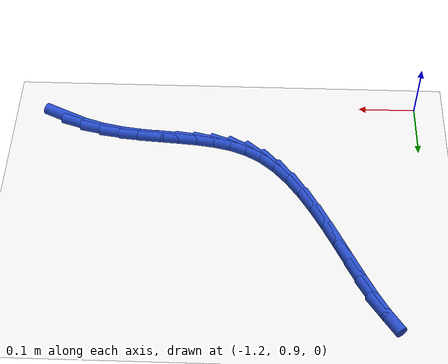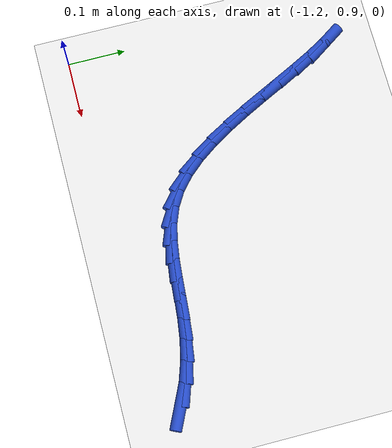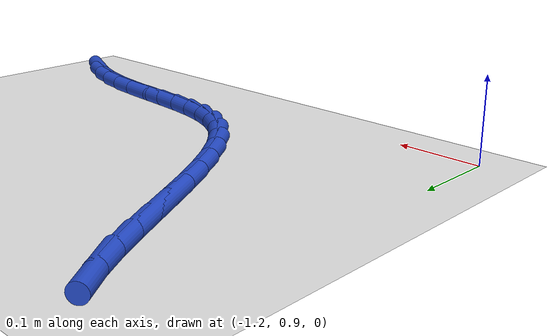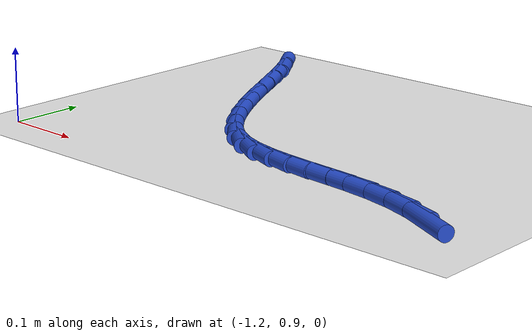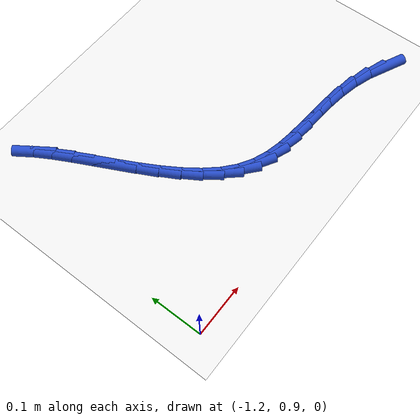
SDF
<sdf version="1.6">
 <world name="default">
  <model name="ground_plane">
   <static>1</static>
   <link name="link">
    <collision name="collision">
     <geometry><plane><normal>0 0 1</normal><size>100 100</size></plane></geometry>
     <surface><friction><ode><mu>100</mu><mu2>50</mu2></ode></friction></surface>
    </collision>
    <visual name="visual">
     <cast_shadows>0</cast_shadows>
     <geometry><plane><normal>0 0 1</normal><size>100 100</size></plane></geometry>
     <material>
      <script><uri>file://media/materials/scripts/gazebo.material</uri><name>Gazebo/WhiteGlow</name></script>
     </material>
    </visual>
   </link>
  </model>
  <model name="line">
   <link name="link_40">
    <pose>-0.5747970883728617 0.942094950162464 0.01 0 1.57 -0.4415338205154128</pose>
    <collision name="collision">
     <geometry><cylinder><radius>0.01</radius><length>0.08</length></cylinder></geometry>
    </collision>
    <visual name="visual">
     <material>
      <script><name>Gazebo/Blue</name><uri>file://media/materials/scripts/gazebo.material</uri></script>
     </material>
     <geometry><cylinder><radius>0.01</radius><length>0.08</length></cylinder></geometry>
    </visual>
   </link>
   <link name="link_41">
    <pose>-0.6097284206902308 0.9586054417624702 0.01 0 1.57 -0.3180967803701681</pose>
    <collision name="collision">
     <geometry><cylinder><radius>0.01</radius><length>0.08</length></cylinder></geometry>
    </collision>
    <visual name="visual">
     <material>
      <script><name>Gazebo/Blue</name><uri>file://media/materials/scripts/gazebo.material</uri></script>
     </material>
     <geometry><cylinder><radius>0.01</radius><length>0.08</length></cylinder></geometry>
    </visual>
   </link>
   <link name="link_42">
    <pose>-0.6446631653225249 0.97010870224219 0.01 0 1.57 -0.21502965447356776</pose>
    <collision name="collision">
     <geometry><cylinder><radius>0.01</radius><length>0.08</length></cylinder></geometry>
    </collision>
    <visual name="visual">
     <material>
      <script><name>Gazebo/Blue</name><uri>file://media/materials/scripts/gazebo.material</uri></script>
     </material>
     <geometry><cylinder><radius>0.01</radius><length>0.08</length></cylinder></geometry>
    </visual>
   </link>
   <link name="link_43">
    <pose>-0.6794056878377567 0.9776966874103797 0.01 0 1.57 -0.13781138018168332</pose>
    <collision name="collision">
     <geometry><cylinder><radius>0.01</radius><length>0.08</length></cylinder></geometry>
    </collision>
    <visual name="visual">
     <material>
      <script><name>Gazebo/Blue</name><uri>file://media/materials/scripts/gazebo.material</uri></script>
     </material>
     <geometry><cylinder><radius>0.01</radius><length>0.08</length></cylinder></geometry>
    </visual>
   </link>
   <link name="link_44">
    <pose>-0.7137603538039384 0.9824613530757954 0.01 0 1.57 -0.0895788842612445</pose>
    <collision name="collision">
     <geometry><cylinder><radius>0.01</radius><length>0.08</length></cylinder></geometry>
    </collision>
    <visual name="visual">
     <material>
      <script><name>Gazebo/Blue</name><uri>file://media/materials/scripts/gazebo.material</uri></script>
     </material>
     <geometry><cylinder><radius>0.01</radius><length>0.08</length></cylinder></geometry>
    </visual>
   </link>
   <link name="link_45">
    <pose>-0.747531528789083 0.9854946550471931 0.01 0 1.57 -0.07243278679098339</pose>
    <collision name="collision">
     <geometry><cylinder><radius>0.01</radius><length>0.08</length></cylinder></geometry>
    </collision>
    <visual name="visual">
     <material>
      <script><name>Gazebo/Blue</name><uri>file://media/materials/scripts/gazebo.material</uri></script>
     </material>
     <geometry><cylinder><radius>0.01</radius><length>0.08</length></cylinder></geometry>
    </visual>
   </link>
   <link name="link_46">
    <pose>-0.7805235783612035 0.9878885491333294 0.01 0 1.57 -0.08867015816660742</pose>
    <collision name="collision">
     <geometry><cylinder><radius>0.01</radius><length>0.08</length></cylinder></geometry>
    </collision>
    <visual name="visual">
     <material>
      <script><name>Gazebo/Blue</name><uri>file://media/materials/scripts/gazebo.material</uri></script>
     </material>
     <geometry><cylinder><radius>0.01</radius><length>0.08</length></cylinder></geometry>
    </visual>
   </link>
   <link name="link_47">
    <pose>-0.8125408680883122 0.9907349911429598 0.01 0 1.57 -0.1413965297258001</pose>
    <collision name="collision">
     <geometry><cylinder><radius>0.01</radius><length>0.08</length></cylinder></geometry>
    </collision>
    <visual name="visual">
     <material>
      <script><name>Gazebo/Blue</name><uri>file://media/materials/scripts/gazebo.material</uri></script>
     </material>
     <geometry><cylinder><radius>0.01</radius><length>0.08</length></cylinder></geometry>
    </visual>
   </link>
   <link name="link_48">
    <pose>-0.8433877635384216 0.9951259368848406 0.01 0 1.57 -0.23400482564709438</pose>
    <collision name="collision">
     <geometry><cylinder><radius>0.01</radius><length>0.08</length></cylinder></geometry>
    </collision>
    <visual name="visual">
     <material>
      <script><name>Gazebo/Blue</name><uri>file://media/materials/scripts/gazebo.material</uri></script>
     </material>
     <geometry><cylinder><radius>0.01</radius><length>0.08</length></cylinder></geometry>
    </visual>
   </link>
   <link name="link_49">
    <pose>-0.8728686302795443 1.0021533421677278 0.01 0 1.57 -0.3677249121886853</pose>
    <collision name="collision">
     <geometry><cylinder><radius>0.01</radius><length>0.08</length></cylinder></geometry>
    </collision>
    <visual name="visual">
     <material>
      <script><name>Gazebo/Blue</name><uri>file://media/materials/scripts/gazebo.material</uri></script>
     </material>
     <geometry><cylinder><radius>0.01</radius><length>0.08</length></cylinder></geometry>
    </visual>
   </link>
   <link name="link_50">
    <pose>-0.9007878338796937 1.012909162800378 0.01 0 1.57 -0.5369145037270657</pose>
    <collision name="collision">
     <geometry><cylinder><radius>0.01</radius><length>0.08</length></cylinder></geometry>
    </collision>
    <visual name="visual">
     <material>
      <script><name>Gazebo/Blue</name><uri>file://media/materials/scripts/gazebo.material</uri></script>
     </material>
     <geometry><cylinder><radius>0.01</radius><length>0.08</length></cylinder></geometry>
    </visual>
   </link>
   <link name="link_51">
    <pose>-0.9269504467968548 1.0284822799401567 0.01 0 1.57 -0.7104099477571018</pose>
    <collision name="collision">
     <geometry><cylinder><radius>0.01</radius><length>0.08</length></cylinder></geometry>
    </collision>
    <visual name="visual">
     <material>
      <script><name>Gazebo/Blue</name><uri>file://media/materials/scripts/gazebo.material</uri></script>
     </material>
     <geometry><cylinder><radius>0.01</radius><length>0.08</length></cylinder></geometry>
    </visual>
   </link>
   <link name="link_52">
    <pose>-0.9512866714759047 1.04941731594464 0.01 0 1.57 -0.8466700879214839</pose>
    <collision name="collision">
     <geometry><cylinder><radius>0.01</radius><length>0.08</length></cylinder></geometry>
    </collision>
    <visual name="visual">
     <material>
      <script><name>Gazebo/Blue</name><uri>file://media/materials/scripts/gazebo.material</uri></script>
     </material>
     <geometry><cylinder><radius>0.01</radius><length>0.08</length></cylinder></geometry>
    </visual>
   </link>
   <link name="link_53">
    <pose>-0.9739946262250186 1.0750935804448265 0.01 0 1.57 -0.9473832392303342</pose>
    <collision name="collision">
     <geometry><cylinder><radius>0.01</radius><length>0.08</length></cylinder></geometry>
    </collision>
    <visual name="visual">
     <material>
      <script><name>Gazebo/Blue</name><uri>file://media/materials/scripts/gazebo.material</uri></script>
     </material>
     <geometry><cylinder><radius>0.01</radius><length>0.08</length></cylinder></geometry>
    </visual>
   </link>
   <link name="link_54">
    <pose>-0.9953051708603469 1.1047296647303828 0.01 0 1.57 -1.0188137581662418</pose>
    <collision name="collision">
     <geometry><cylinder><radius>0.01</radius><length>0.08</length></cylinder></geometry>
    </collision>
    <visual name="visual">
     <material>
      <script><name>Gazebo/Blue</name><uri>file://media/materials/scripts/gazebo.material</uri></script>
     </material>
     <geometry><cylinder><radius>0.01</radius><length>0.08</length></cylinder></geometry>
    </visual>
   </link>
   <link name="link_55">
    <pose>-1.0154234042542682 1.1373978133899758 0.01 0 1.57 -1.0669198641161672</pose>
    <collision name="collision">
     <geometry><cylinder><radius>0.01</radius><length>0.08</length></cylinder></geometry>
    </collision>
    <visual name="visual">
     <material>
      <script><name>Gazebo/Blue</name><uri>file://media/materials/scripts/gazebo.material</uri></script>
     </material>
     <geometry><cylinder><radius>0.01</radius><length>0.08</length></cylinder></geometry>
    </visual>
   </link>
   <link name="link_56">
    <pose>-1.0345353581518941 1.172061951565698 0.01 0 1.57 -1.0964157012653144</pose>
    <collision name="collision">
     <geometry><cylinder><radius>0.01</radius><length>0.08</length></cylinder></geometry>
    </collision>
    <visual name="visual">
     <material>
      <script><name>Gazebo/Blue</name><uri>file://media/materials/scripts/gazebo.material</uri></script>
     </material>
     <geometry><cylinder><radius>0.01</radius><length>0.08</length></cylinder></geometry>
    </visual>
   </link>
   <link name="link_57">
    <pose>-1.05282661597951 1.2076834575216233 0.01 0 1.57 -1.1097176803708253</pose>
    <collision name="collision">
     <geometry><cylinder><radius>0.01</radius><length>0.08</length></cylinder></geometry>
    </collision>
    <visual name="visual">
     <material>
      <script><name>Gazebo/Blue</name><uri>file://media/materials/scripts/gazebo.material</uri></script>
     </material>
     <geometry><cylinder><radius>0.01</radius><length>0.08</length></cylinder></geometry>
    </visual>
   </link>
   <link name="link_58">
    <pose>-1.0704827611633996 1.2432237095218246 0.01 0 1.57 -1.1072317461975751</pose>
    <collision name="collision">
     <geometry><cylinder><radius>0.01</radius><length>0.08</length></cylinder></geometry>
    </collision>
    <visual name="visual">
     <material>
      <script><name>Gazebo/Blue</name><uri>file://media/materials/scripts/gazebo.material</uri></script>
     </material>
     <geometry><cylinder><radius>0.01</radius><length>0.08</length></cylinder></geometry>
    </visual>
   </link>
   <link name="link_59">
    <pose>-1.087689377129848 1.2776440858303753 0.01 0 1.57 -1.087223373618693</pose>
    <collision name="collision">
     <geometry><cylinder><radius>0.01</radius><length>0.08</length></cylinder></geometry>
    </collision>
    <visual name="visual">
     <material>
      <script><name>Gazebo/Blue</name><uri>file://media/materials/scripts/gazebo.material</uri></script>
     </material>
     <geometry><cylinder><radius>0.01</radius><length>0.08</length></cylinder></geometry>
    </visual>
   </link>
   <link name="link_60">
    <pose>-1.1046320473051392 1.3099059647113473 0.01 0 1.57 -1.045038843182459</pose>
    <collision name="collision">
     <geometry><cylinder><radius>0.01</radius><length>0.08</length></cylinder></geometry>
    </collision>
    <visual name="visual">
     <material>
      <script><name>Gazebo/Blue</name><uri>file://media/materials/scripts/gazebo.material</uri></script>
     </material>
     <geometry><cylinder><radius>0.01</radius><length>0.08</length></cylinder></geometry>
    </visual>
   </link>
   <link name="link_61">
    <pose>-1.121496355115558 1.3389707244288145 0.01 0 1.57 -0.9712056810881692</pose>
    <collision name="collision">
     <geometry><cylinder><radius>0.01</radius><length>0.08</length></cylinder></geometry>
    </collision>
    <visual name="visual">
     <material>
      <script><name>Gazebo/Blue</name><uri>file://media/materials/scripts/gazebo.material</uri></script>
     </material>
     <geometry><cylinder><radius>0.01</radius><length>0.08</length></cylinder></geometry>
    </visual>
   </link>
  </model>
 </world>
</sdf>
